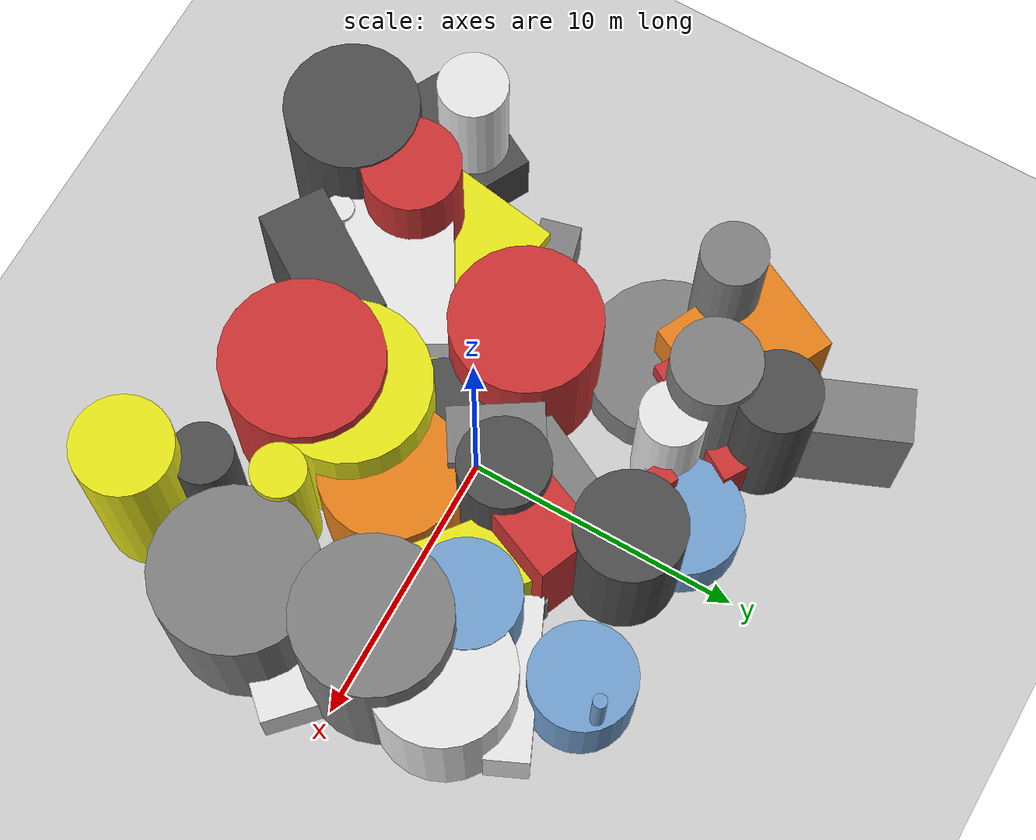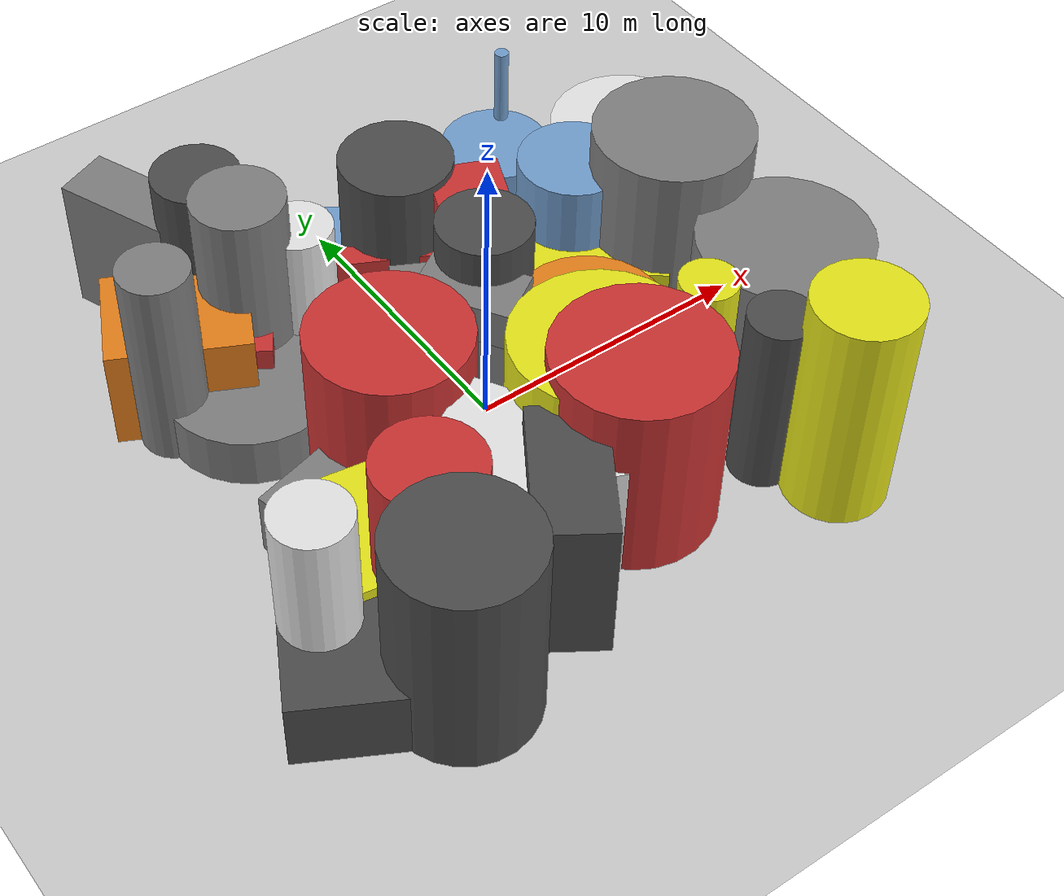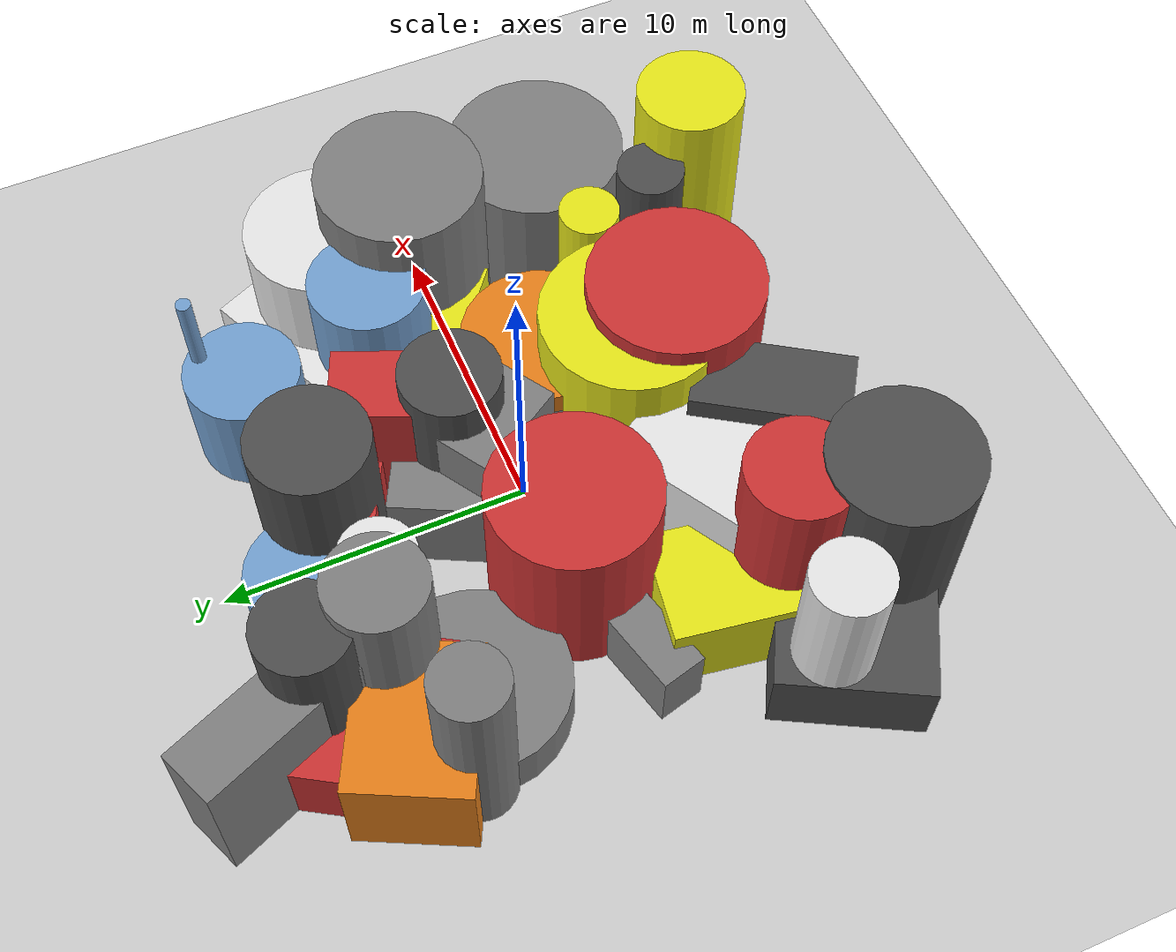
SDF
<?xml version='1.0'?>
<sdf version='1.6'>
  <world name='default'>
    <!-- Sun light -->
    <light name='sun' type='directional'>
      <cast_shadows>1</cast_shadows>
      <pose>0 0 10 0 0 0</pose>
      <diffuse>0.8 0.8 0.8 1</diffuse>
      <specular>0.2 0.2 0.2 1</specular>
      <attenuation>
        <range>1000</range>
        <constant>0.9</constant>
        <linear>0.01</linear>
        <quadratic>0.001</quadratic>
      </attenuation>
      <direction>-0.5 0.1 -0.9</direction>
    </light>

    <!-- Ground plane -->
    <model name='ground_plane'>
      <static>1</static>
      <link name='link'>
        <collision name='collision'>
          <geometry>
            <plane>
              <normal>0 0 1</normal>
              <size>100 100</size>
            </plane>
          </geometry>
          <surface>
            <contact>
              <collide_bitmask>65535</collide_bitmask>
              <ode/>
            </contact>
            <friction>
              <ode>
                <mu>100</mu>
                <mu2>50</mu2>
              </ode>
              <torsional><ode/></torsional>
            </friction>
            <bounce/>
          </surface>
          <max_contacts>10</max_contacts>
        </collision>
        <visual name='visual'>
          <cast_shadows>0</cast_shadows>
          <geometry>
            <plane>
              <normal>0 0 1</normal>
              <size>100 100</size>
            </plane>
          </geometry>
          <material>
            <script>
              <uri>file://media/materials/scripts/gazebo.material</uri>
              <n>Gazebo/Grey</n>
            </script>
          </material>
        </visual>
      </link>
    </model>

    <!-- Environment -->
    <magnetic_field>6e-06 2.3e-05 -4.2e-05</magnetic_field>
    <atmosphere type='adiabatic'/>
    <physics name='default_physics' default='0' type='ode'>
      <gravity>0 0 -9.8</gravity>
      <max_step_size>0.004</max_step_size>
      <real_time_factor>1</real_time_factor>
      <real_time_update_rate>250</real_time_update_rate>
    </physics>
    <scene>
      <ambient>0.4 0.4 0.4 1</ambient>
      <background>0.7 0.7 0.7 1</background>
      <shadows>1</shadows>
    </scene>
    <wind/>
    <spherical_coordinates>
      <surface_model>EARTH_WGS84</surface_model>
      <latitude_deg>0</latitude_deg>
      <longitude_deg>0</longitude_deg>
      <elevation>0</elevation>
      <heading_deg>0</heading_deg>
    </spherical_coordinates>

    <!-- ============ OBSTACLES (50) ============ -->
    <model name='obs_00'>
      <static>1</static>
      <link name='link'>
        <visual name='visual'>
          <geometry>
            <box>
              <size>3.5329 4.4609 2.9131</size>
            </box>
          </geometry>
          <material>
            <script>
              <n>Gazebo/Yellow</n>
              <uri>file://media/materials/scripts/gazebo.material</uri>
            </script>
            <ambient>0.9 0.9 0.1 1</ambient>
          </material>
        </visual>
        <collision name='collision'>
          <geometry>
            <box>
              <size>3.5329 4.4609 2.9131</size>
            </box>
          </geometry>
          <max_contacts>10</max_contacts>
          <surface>
            <contact><ode/></contact>
            <bounce/>
            <friction>
              <ode><mu>1</mu><mu2>1</mu2></ode>
              <torsional><ode/></torsional>
            </friction>
          </surface>
        </collision>
      </link>
      <pose>-6.4892 -3.9807 1.4565 0 0 2.9872</pose>
    </model>

    <model name='obs_01'>
      <static>1</static>
      <link name='link'>
        <visual name='visual'>
          <geometry>
            <cylinder>
              <radius>1.5410</radius>
              <length>7.1785</length>
            </cylinder>
          </geometry>
          <material>
            <script>
              <n>Gazebo/Grey</n>
              <uri>file://media/materials/scripts/gazebo.material</uri>
            </script>
            <ambient>0.5 0.5 0.5 1</ambient>
          </material>
        </visual>
        <collision name='collision'>
          <geometry>
            <cylinder>
              <radius>1.5410</radius>
              <length>7.1785</length>
            </cylinder>
          </geometry>
          <max_contacts>10</max_contacts>
          <surface>
            <contact><ode/></contact>
            <bounce/>
            <friction>
              <ode><mu>1</mu><mu2>1</mu2></ode>
              <torsional><ode/></torsional>
            </friction>
          </surface>
        </collision>
      </link>
      <pose>-4.9716 6.1829 3.5893 0 0 1.7715</pose>
    </model>

    <model name='obs_02'>
      <static>1</static>
      <link name='link'>
        <visual name='visual'>
          <geometry>
            <cylinder>
              <radius>1.8531</radius>
              <length>3.6703</length>
            </cylinder>
          </geometry>
          <material>
            <script>
              <n>Gazebo/Blue</n>
              <uri>file://media/materials/scripts/gazebo.material</uri>
            </script>
            <ambient>0.447 0.624 0.812 1</ambient>
          </material>
        </visual>
        <collision name='collision'>
          <geometry>
            <cylinder>
              <radius>1.8531</radius>
              <length>3.6703</length>
            </cylinder>
          </geometry>
          <max_contacts>10</max_contacts>
          <surface>
            <contact><ode/></contact>
            <bounce/>
            <friction>
              <ode><mu>1</mu><mu2>1</mu2></ode>
              <torsional><ode/></torsional>
            </friction>
          </surface>
        </collision>
      </link>
      <pose>5.4756 7.1289 1.8352 0 0 2.6334</pose>
    </model>

    <model name='obs_03'>
      <static>1</static>
      <link name='link'>
        <visual name='visual'>
          <geometry>
            <cylinder>
              <radius>1.8640</radius>
              <length>4.3508</length>
            </cylinder>
          </geometry>
          <material>
            <script>
              <n>Gazebo/White</n>
              <uri>file://media/materials/scripts/gazebo.material</uri>
            </script>
            <ambient>0.9 0.9 0.9 1</ambient>
          </material>
        </visual>
        <collision name='collision'>
          <geometry>
            <cylinder>
              <radius>1.8640</radius>
              <length>4.3508</length>
            </cylinder>
          </geometry>
          <max_contacts>10</max_contacts>
          <surface>
            <contact><ode/></contact>
            <bounce/>
            <friction>
              <ode><mu>1</mu><mu2>1</mu2></ode>
              <torsional><ode/></torsional>
            </friction>
          </surface>
        </collision>
      </link>
      <pose>-0.0577 -5.9034 2.1754 0 0 0.5254</pose>
    </model>

    <model name='obs_04'>
      <static>1</static>
      <link name='link'>
        <visual name='visual'>
          <geometry>
            <cylinder>
              <radius>1.2345</radius>
              <length>7.0005</length>
            </cylinder>
          </geometry>
          <material>
            <script>
              <n>Gazebo/White</n>
              <uri>file://media/materials/scripts/gazebo.material</uri>
            </script>
            <ambient>0.9 0.9 0.9 1</ambient>
          </material>
        </visual>
        <collision name='collision'>
          <geometry>
            <cylinder>
              <radius>1.2345</radius>
              <length>7.0005</length>
            </cylinder>
          </geometry>
          <max_contacts>10</max_contacts>
          <surface>
            <contact><ode/></contact>
            <bounce/>
            <friction>
              <ode><mu>1</mu><mu2>1</mu2></ode>
              <torsional><ode/></torsional>
            </friction>
          </surface>
        </collision>
      </link>
      <pose>-9.7882 -5.6520 3.5002 0 0 1.3908</pose>
    </model>

    <model name='obs_05'>
      <static>1</static>
      <link name='link'>
        <visual name='visual'>
          <geometry>
            <cylinder>
              <radius>1.8509</radius>
              <length>6.0012</length>
            </cylinder>
          </geometry>
          <material>
            <script>
              <n>Gazebo/Blue</n>
              <uri>file://media/materials/scripts/gazebo.material</uri>
            </script>
            <ambient>0.447 0.624 0.812 1</ambient>
          </material>
        </visual>
        <collision name='collision'>
          <geometry>
            <cylinder>
              <radius>1.8509</radius>
              <length>6.0012</length>
            </cylinder>
          </geometry>
          <max_contacts>10</max_contacts>
          <surface>
            <contact><ode/></contact>
            <bounce/>
            <friction>
              <ode><mu>1</mu><mu2>1</mu2></ode>
              <torsional><ode/></torsional>
            </friction>
          </surface>
        </collision>
      </link>
      <pose>5.4533 2.7887 3.0006 0 0 2.0248</pose>
    </model>

    <model name='obs_06'>
      <static>1</static>
      <link name='link'>
        <visual name='visual'>
          <geometry>
            <cylinder>
              <radius>1.0707</radius>
              <length>6.4828</length>
            </cylinder>
          </geometry>
          <material>
            <script>
              <n>Gazebo/DarkGrey</n>
              <uri>file://media/materials/scripts/gazebo.material</uri>
            </script>
            <ambient>0.3 0.3 0.3 1</ambient>
          </material>
        </visual>
        <collision name='collision'>
          <geometry>
            <cylinder>
              <radius>1.0707</radius>
              <length>6.4828</length>
            </cylinder>
          </geometry>
          <max_contacts>10</max_contacts>
          <surface>
            <contact><ode/></contact>
            <bounce/>
            <friction>
              <ode><mu>1</mu><mu2>1</mu2></ode>
              <torsional><ode/></torsional>
            </friction>
          </surface>
        </collision>
      </link>
      <pose>5.7296 -6.8460 3.2414 0 0 1.3660</pose>
    </model>

    <model name='obs_07'>
      <static>1</static>
      <link name='link'>
        <visual name='visual'>
          <geometry>
            <cylinder>
              <radius>1.0268</radius>
              <length>3.2236</length>
            </cylinder>
          </geometry>
          <material>
            <script>
              <n>Gazebo/Yellow</n>
              <uri>file://media/materials/scripts/gazebo.material</uri>
            </script>
            <ambient>0.9 0.9 0.1 1</ambient>
          </material>
        </visual>
        <collision name='collision'>
          <geometry>
            <cylinder>
              <radius>1.0268</radius>
              <length>3.2236</length>
            </cylinder>
          </geometry>
          <max_contacts>10</max_contacts>
          <surface>
            <contact><ode/></contact>
            <bounce/>
            <friction>
              <ode><mu>1</mu><mu2>1</mu2></ode>
              <torsional><ode/></torsional>
            </friction>
          </surface>
        </collision>
      </link>
      <pose>-3.3366 -7.4863 1.6118 0 0 0.0611</pose>
    </model>

    <model name='obs_08'>
      <static>1</static>
      <link name='link'>
        <visual name='visual'>
          <geometry>
            <box>
              <size>4.6411 3.7095 3.7119</size>
            </box>
          </geometry>
          <material>
            <script>
              <n>Gazebo/Orange</n>
              <uri>file://media/materials/scripts/gazebo.material</uri>
            </script>
            <ambient>0.9 0.5 0.1 1</ambient>
          </material>
        </visual>
        <collision name='collision'>
          <geometry>
            <box>
              <size>4.6411 3.7095 3.7119</size>
            </box>
          </geometry>
          <max_contacts>10</max_contacts>
          <surface>
            <contact><ode/></contact>
            <bounce/>
            <friction>
              <ode><mu>1</mu><mu2>1</mu2></ode>
              <torsional><ode/></torsional>
            </friction>
          </surface>
        </collision>
      </link>
      <pose>-7.4863 6.2615 1.8559 0 0 2.6836</pose>
    </model>

    <model name='obs_09'>
      <static>1</static>
      <link name='link'>
        <visual name='visual'>
          <geometry>
            <box>
              <size>3.6032 2.3589 5.5884</size>
            </box>
          </geometry>
          <material>
            <script>
              <n>Gazebo/Red</n>
              <uri>file://media/materials/scripts/gazebo.material</uri>
            </script>
            <ambient>0.8 0.2 0.2 1</ambient>
          </material>
        </visual>
        <collision name='collision'>
          <geometry>
            <box>
              <size>3.6032 2.3589 5.5884</size>
            </box>
          </geometry>
          <max_contacts>10</max_contacts>
          <surface>
            <contact><ode/></contact>
            <bounce/>
            <friction>
              <ode><mu>1</mu><mu2>1</mu2></ode>
              <torsional><ode/></torsional>
            </friction>
          </surface>
        </collision>
      </link>
      <pose>1.9221 3.3912 2.7942 0 0 1.1732</pose>
    </model>

    <model name='obs_10'>
      <static>1</static>
      <link name='link'>
        <visual name='visual'>
          <geometry>
            <cylinder>
              <radius>2.2258</radius>
              <length>3.2993</length>
            </cylinder>
          </geometry>
          <material>
            <script>
              <n>Gazebo/Yellow</n>
              <uri>file://media/materials/scripts/gazebo.material</uri>
            </script>
            <ambient>0.9 0.9 0.1 1</ambient>
          </material>
        </visual>
        <collision name='collision'>
          <geometry>
            <cylinder>
              <radius>2.2258</radius>
              <length>3.2993</length>
            </cylinder>
          </geometry>
          <max_contacts>10</max_contacts>
          <surface>
            <contact><ode/></contact>
            <bounce/>
            <friction>
              <ode><mu>1</mu><mu2>1</mu2></ode>
              <torsional><ode/></torsional>
            </friction>
          </surface>
        </collision>
      </link>
      <pose>-2.0014 -4.6153 1.6497 0 0 1.6910</pose>
    </model>

    <model name='obs_11'>
      <static>1</static>
      <link name='link'>
        <visual name='visual'>
          <geometry>
            <box>
              <size>0.7570 5.1670 1.8831</size>
            </box>
          </geometry>
          <material>
            <script>
              <n>Gazebo/Grey</n>
              <uri>file://media/materials/scripts/gazebo.material</uri>
            </script>
            <ambient>0.5 0.5 0.5 1</ambient>
          </material>
        </visual>
        <collision name='collision'>
          <geometry>
            <box>
              <size>0.7570 5.1670 1.8831</size>
            </box>
          </geometry>
          <max_contacts>10</max_contacts>
          <surface>
            <contact><ode/></contact>
            <bounce/>
            <friction>
              <ode><mu>1</mu><mu2>1</mu2></ode>
              <torsional><ode/></torsional>
            </friction>
          </surface>
        </collision>
      </link>
      <pose>4.2068 -1.1250 0.9416 0 0 1.0818</pose>
    </model>

    <model name='obs_12'>
      <static>1</static>
      <link name='link'>
        <visual name='visual'>
          <geometry>
            <cylinder>
              <radius>2.0919</radius>
              <length>2.2964</length>
            </cylinder>
          </geometry>
          <material>
            <script>
              <n>Gazebo/Blue</n>
              <uri>file://media/materials/scripts/gazebo.material</uri>
            </script>
            <ambient>0.447 0.624 0.812 1</ambient>
          </material>
        </visual>
        <collision name='collision'>
          <geometry>
            <cylinder>
              <radius>2.0919</radius>
              <length>2.2964</length>
            </cylinder>
          </geometry>
          <max_contacts>10</max_contacts>
          <surface>
            <contact><ode/></contact>
            <bounce/>
            <friction>
              <ode><mu>1</mu><mu2>1</mu2></ode>
              <torsional><ode/></torsional>
            </friction>
          </surface>
        </collision>
      </link>
      <pose>-1.3203 7.3149 1.1482 0 0 0.2286</pose>
    </model>

    <model name='obs_13'>
      <static>1</static>
      <link name='link'>
        <visual name='visual'>
          <geometry>
            <cylinder>
              <radius>0.2409</radius>
              <length>6.4012</length>
            </cylinder>
          </geometry>
          <material>
            <script>
              <n>Gazebo/Blue</n>
              <uri>file://media/materials/scripts/gazebo.material</uri>
            </script>
            <ambient>0.447 0.624 0.812 1</ambient>
          </material>
        </visual>
        <collision name='collision'>
          <geometry>
            <cylinder>
              <radius>0.2409</radius>
              <length>6.4012</length>
            </cylinder>
          </geometry>
          <max_contacts>10</max_contacts>
          <surface>
            <contact><ode/></contact>
            <bounce/>
            <friction>
              <ode><mu>1</mu><mu2>1</mu2></ode>
              <torsional><ode/></torsional>
            </friction>
          </surface>
        </collision>
      </link>
      <pose>6.4886 8.1846 3.2006 0 0 2.8058</pose>
    </model>

    <model name='obs_14'>
      <static>1</static>
      <link name='link'>
        <visual name='visual'>
          <geometry>
            <cylinder>
              <radius>1.7191</radius>
              <length>7.8987</length>
            </cylinder>
          </geometry>
          <material>
            <script>
              <n>Gazebo/Yellow</n>
              <uri>file://media/materials/scripts/gazebo.material</uri>
            </script>
            <ambient>0.9 0.9 0.1 1</ambient>
          </material>
        </visual>
        <collision name='collision'>
          <geometry>
            <cylinder>
              <radius>1.7191</radius>
              <length>7.8987</length>
            </cylinder>
          </geometry>
          <max_contacts>10</max_contacts>
          <surface>
            <contact><ode/></contact>
            <bounce/>
            <friction>
              <ode><mu>1</mu><mu2>1</mu2></ode>
              <torsional><ode/></torsional>
            </friction>
          </surface>
        </collision>
      </link>
      <pose>7.0598 -8.7849 3.9493 0 0 2.3421</pose>
    </model>

    <model name='obs_15'>
      <static>1</static>
      <link name='link'>
        <visual name='visual'>
          <geometry>
            <box>
              <size>2.6990 5.9891 3.6079</size>
            </box>
          </geometry>
          <material>
            <script>
              <n>Gazebo/Yellow</n>
              <uri>file://media/materials/scripts/gazebo.material</uri>
            </script>
            <ambient>0.9 0.9 0.1 1</ambient>
          </material>
        </visual>
        <collision name='collision'>
          <geometry>
            <box>
              <size>2.6990 5.9891 3.6079</size>
            </box>
          </geometry>
          <max_contacts>10</max_contacts>
          <surface>
            <contact><ode/></contact>
            <bounce/>
            <friction>
              <ode><mu>1</mu><mu2>1</mu2></ode>
              <torsional><ode/></torsional>
            </friction>
          </surface>
        </collision>
      </link>
      <pose>4.6727 1.5136 1.8040 0 0 0.9053</pose>
    </model>

    <model name='obs_16'>
      <static>1</static>
      <link name='link'>
        <visual name='visual'>
          <geometry>
            <cylinder>
              <radius>1.1615</radius>
              <length>7.1233</length>
            </cylinder>
          </geometry>
          <material>
            <script>
              <n>Gazebo/Grey</n>
              <uri>file://media/materials/scripts/gazebo.material</uri>
            </script>
            <ambient>0.5 0.5 0.5 1</ambient>
          </material>
        </visual>
        <collision name='collision'>
          <geometry>
            <cylinder>
              <radius>1.1615</radius>
              <length>7.1233</length>
            </cylinder>
          </geometry>
          <max_contacts>10</max_contacts>
          <surface>
            <contact><ode/></contact>
            <bounce/>
            <friction>
              <ode><mu>1</mu><mu2>1</mu2></ode>
              <torsional><ode/></torsional>
            </friction>
          </surface>
        </collision>
      </link>
      <pose>-8.6131 4.9348 3.5617 0 0 2.5418</pose>
    </model>

    <model name='obs_17'>
      <static>1</static>
      <link name='link'>
        <visual name='visual'>
          <geometry>
            <box>
              <size>4.1352 0.8401 3.1221</size>
            </box>
          </geometry>
          <material>
            <script>
              <n>Gazebo/Red</n>
              <uri>file://media/materials/scripts/gazebo.material</uri>
            </script>
            <ambient>0.8 0.2 0.2 1</ambient>
          </material>
        </visual>
        <collision name='collision'>
          <geometry>
            <box>
              <size>4.1352 0.8401 3.1221</size>
            </box>
          </geometry>
          <max_contacts>10</max_contacts>
          <surface>
            <contact><ode/></contact>
            <bounce/>
            <friction>
              <ode><mu>1</mu><mu2>1</mu2></ode>
              <torsional><ode/></torsional>
            </friction>
          </surface>
        </collision>
      </link>
      <pose>-0.4330 5.3337 1.5610 0 0 2.6818</pose>
    </model>

    <model name='obs_18'>
      <static>1</static>
      <link name='link'>
        <visual name='visual'>
          <geometry>
            <cylinder>
              <radius>2.9112</radius>
              <length>1.8172</length>
            </cylinder>
          </geometry>
          <material>
            <script>
              <n>Gazebo/Grey</n>
              <uri>file://media/materials/scripts/gazebo.material</uri>
            </script>
            <ambient>0.5 0.5 0.5 1</ambient>
          </material>
        </visual>
        <collision name='collision'>
          <geometry>
            <cylinder>
              <radius>2.9112</radius>
              <length>1.8172</length>
            </cylinder>
          </geometry>
          <max_contacts>10</max_contacts>
          <surface>
            <contact><ode/></contact>
            <bounce/>
            <friction>
              <ode><mu>1</mu><mu2>1</mu2></ode>
              <torsional><ode/></torsional>
            </friction>
          </surface>
        </collision>
      </link>
      <pose>-6.2414 4.0862 0.9086 0 0 0.7980</pose>
    </model>

    <model name='obs_19'>
      <static>1</static>
      <link name='link'>
        <visual name='visual'>
          <geometry>
            <cylinder>
              <radius>2.4707</radius>
              <length>4.3574</length>
            </cylinder>
          </geometry>
          <material>
            <script>
              <n>Gazebo/Orange</n>
              <uri>file://media/materials/scripts/gazebo.material</uri>
            </script>
            <ambient>0.9 0.5 0.1 1</ambient>
          </material>
        </visual>
        <collision name='collision'>
          <geometry>
            <cylinder>
              <radius>2.4707</radius>
              <length>4.3574</length>
            </cylinder>
          </geometry>
          <max_contacts>10</max_contacts>
          <surface>
            <contact><ode/></contact>
            <bounce/>
            <friction>
              <ode><mu>1</mu><mu2>1</mu2></ode>
              <torsional><ode/></torsional>
            </friction>
          </surface>
        </collision>
      </link>
      <pose>2.6639 -1.7307 2.1787 0 0 3.1128</pose>
    </model>

    <model name='obs_20'>
      <static>1</static>
      <link name='link'>
        <visual name='visual'>
          <geometry>
            <cylinder>
              <radius>2.1596</radius>
              <length>3.5907</length>
            </cylinder>
          </geometry>
          <material>
            <script>
              <n>Gazebo/DarkGrey</n>
              <uri>file://media/materials/scripts/gazebo.material</uri>
            </script>
            <ambient>0.3 0.3 0.3 1</ambient>
          </material>
        </visual>
        <collision name='collision'>
          <geometry>
            <cylinder>
              <radius>2.1596</radius>
              <length>3.5907</length>
            </cylinder>
          </geometry>
          <max_contacts>10</max_contacts>
          <surface>
            <contact><ode/></contact>
            <bounce/>
            <friction>
              <ode><mu>1</mu><mu2>1</mu2></ode>
              <torsional><ode/></torsional>
            </friction>
          </surface>
        </collision>
      </link>
      <pose>0.0121 -1.1960 1.7953 0 0 1.0585</pose>
    </model>

    <model name='obs_21'>
      <static>1</static>
      <link name='link'>
        <visual name='visual'>
          <geometry>
            <box>
              <size>4.3103 3.0459 3.1133</size>
            </box>
          </geometry>
          <material>
            <script>
              <n>Gazebo/Grey</n>
              <uri>file://media/materials/scripts/gazebo.material</uri>
            </script>
            <ambient>0.5 0.5 0.5 1</ambient>
          </material>
        </visual>
        <collision name='collision'>
          <geometry>
            <box>
              <size>4.3103 3.0459 3.1133</size>
            </box>
          </geometry>
          <max_contacts>10</max_contacts>
          <surface>
            <contact><ode/></contact>
            <bounce/>
            <friction>
              <ode><mu>1</mu><mu2>1</mu2></ode>
              <torsional><ode/></torsional>
            </friction>
          </surface>
        </collision>
      </link>
      <pose>-0.1835 2.0252 1.5567 0 0 1.1032</pose>
    </model>

    <model name='obs_22'>
      <static>1</static>
      <link name='link'>
        <visual name='visual'>
          <geometry>
            <cylinder>
              <radius>2.6319</radius>
              <length>7.4570</length>
            </cylinder>
          </geometry>
          <material>
            <script>
              <n>Gazebo/Grey</n>
              <uri>file://media/materials/scripts/gazebo.material</uri>
            </script>
            <ambient>0.5 0.5 0.5 1</ambient>
          </material>
        </visual>
        <collision name='collision'>
          <geometry>
            <cylinder>
              <radius>2.6319</radius>
              <length>7.4570</length>
            </cylinder>
          </geometry>
          <max_contacts>10</max_contacts>
          <surface>
            <contact><ode/></contact>
            <bounce/>
            <friction>
              <ode><mu>1</mu><mu2>1</mu2></ode>
              <torsional><ode/></torsional>
            </friction>
          </surface>
        </collision>
      </link>
      <pose>7.8145 0.7759 3.7285 0 0 2.5449</pose>
    </model>

    <model name='obs_23'>
      <static>1</static>
      <link name='link'>
        <visual name='visual'>
          <geometry>
            <cylinder>
              <radius>1.7606</radius>
              <length>3.4132</length>
            </cylinder>
          </geometry>
          <material>
            <script>
              <n>Gazebo/Grey</n>
              <uri>file://media/materials/scripts/gazebo.material</uri>
            </script>
            <ambient>0.5 0.5 0.5 1</ambient>
          </material>
        </visual>
        <collision name='collision'>
          <geometry>
            <cylinder>
              <radius>1.7606</radius>
              <length>3.4132</length>
            </cylinder>
          </geometry>
          <max_contacts>10</max_contacts>
          <surface>
            <contact><ode/></contact>
            <bounce/>
            <friction>
              <ode><mu>1</mu><mu2>1</mu2></ode>
              <torsional><ode/></torsional>
            </friction>
          </surface>
        </collision>
      </link>
      <pose>7.7593 -5.6863 1.7066 0 0 2.7216</pose>
    </model>

    <model name='obs_24'>
      <static>1</static>
      <link name='link'>
        <visual name='visual'>
          <geometry>
            <box>
              <size>1.5622 5.5812 2.8104</size>
            </box>
          </geometry>
          <material>
            <script>
              <n>Gazebo/White</n>
              <uri>file://media/materials/scripts/gazebo.material</uri>
            </script>
            <ambient>0.9 0.9 0.9 1</ambient>
          </material>
        </visual>
        <collision name='collision'>
          <geometry>
            <box>
              <size>1.5622 5.5812 2.8104</size>
            </box>
          </geometry>
          <max_contacts>10</max_contacts>
          <surface>
            <contact><ode/></contact>
            <bounce/>
            <friction>
              <ode><mu>1</mu><mu2>1</mu2></ode>
              <torsional><ode/></torsional>
            </friction>
          </surface>
        </collision>
      </link>
      <pose>6.4451 5.1081 1.4052 0 0 1.9933</pose>
    </model>

    <model name='obs_25'>
      <static>1</static>
      <link name='link'>
        <visual name='visual'>
          <geometry>
            <cylinder>
              <radius>1.7161</radius>
              <length>7.0272</length>
            </cylinder>
          </geometry>
          <material>
            <script>
              <n>Gazebo/Red</n>
              <uri>file://media/materials/scripts/gazebo.material</uri>
            </script>
            <ambient>0.8 0.2 0.2 1</ambient>
          </material>
        </visual>
        <collision name='collision'>
          <geometry>
            <cylinder>
              <radius>1.7161</radius>
              <length>7.0272</length>
            </cylinder>
          </geometry>
          <max_contacts>10</max_contacts>
          <surface>
            <contact><ode/></contact>
            <bounce/>
            <friction>
              <ode><mu>1</mu><mu2>1</mu2></ode>
              <torsional><ode/></torsional>
            </friction>
          </surface>
        </collision>
      </link>
      <pose>-6.2296 -5.9891 3.5136 0 0 0.1714</pose>
    </model>

    <model name='obs_26'>
      <static>1</static>
      <link name='link'>
        <visual name='visual'>
          <geometry>
            <cylinder>
              <radius>1.9077</radius>
              <length>5.8467</length>
            </cylinder>
          </geometry>
          <material>
            <script>
              <n>Gazebo/DarkGrey</n>
              <uri>file://media/materials/scripts/gazebo.material</uri>
            </script>
            <ambient>0.3 0.3 0.3 1</ambient>
          </material>
        </visual>
        <collision name='collision'>
          <geometry>
            <cylinder>
              <radius>1.9077</radius>
              <length>5.8467</length>
            </cylinder>
          </geometry>
          <max_contacts>10</max_contacts>
          <surface>
            <contact><ode/></contact>
            <bounce/>
            <friction>
              <ode><mu>1</mu><mu2>1</mu2></ode>
              <torsional><ode/></torsional>
            </friction>
          </surface>
        </collision>
      </link>
      <pose>0.8751 6.2690 2.9233 0 0 1.6676</pose>
    </model>

    <model name='obs_27'>
      <static>1</static>
      <link name='link'>
        <visual name='visual'>
          <geometry>
            <box>
              <size>2.4356 4.8236 5.3627</size>
            </box>
          </geometry>
          <material>
            <script>
              <n>Gazebo/DarkGrey</n>
              <uri>file://media/materials/scripts/gazebo.material</uri>
            </script>
            <ambient>0.3 0.3 0.3 1</ambient>
          </material>
        </visual>
        <collision name='collision'>
          <geometry>
            <box>
              <size>2.4356 4.8236 5.3627</size>
            </box>
          </geometry>
          <max_contacts>10</max_contacts>
          <surface>
            <contact><ode/></contact>
            <bounce/>
            <friction>
              <ode><mu>1</mu><mu2>1</mu2></ode>
              <torsional><ode/></torsional>
            </friction>
          </surface>
        </collision>
      </link>
      <pose>-2.2952 -7.2395 2.6813 0 0 2.5636</pose>
    </model>

    <model name='obs_28'>
      <static>1</static>
      <link name='link'>
        <visual name='visual'>
          <geometry>
            <box>
              <size>1.8727 1.2519 1.4490</size>
            </box>
          </geometry>
          <material>
            <script>
              <n>Gazebo/Grey</n>
              <uri>file://media/materials/scripts/gazebo.material</uri>
            </script>
            <ambient>0.5 0.5 0.5 1</ambient>
          </material>
        </visual>
        <collision name='collision'>
          <geometry>
            <box>
              <size>1.8727 1.2519 1.4490</size>
            </box>
          </geometry>
          <max_contacts>10</max_contacts>
          <surface>
            <contact><ode/></contact>
            <bounce/>
            <friction>
              <ode><mu>1</mu><mu2>1</mu2></ode>
              <torsional><ode/></torsional>
            </friction>
          </surface>
        </collision>
      </link>
      <pose>-3.8079 -3.6028 0.7245 0 0 1.0941</pose>
    </model>

    <model name='obs_29'>
      <static>1</static>
      <link name='link'>
        <visual name='visual'>
          <geometry>
            <cylinder>
              <radius>1.1694</radius>
              <length>5.5424</length>
            </cylinder>
          </geometry>
          <material>
            <script>
              <n>Gazebo/White</n>
              <uri>file://media/materials/scripts/gazebo.material</uri>
            </script>
            <ambient>0.9 0.9 0.9 1</ambient>
          </material>
        </visual>
        <collision name='collision'>
          <geometry>
            <cylinder>
              <radius>1.1694</radius>
              <length>5.5424</length>
            </cylinder>
          </geometry>
          <max_contacts>10</max_contacts>
          <surface>
            <contact><ode/></contact>
            <bounce/>
            <friction>
              <ode><mu>1</mu><mu2>1</mu2></ode>
              <torsional><ode/></torsional>
            </friction>
          </surface>
        </collision>
      </link>
      <pose>-3.2650 5.6503 2.7712 0 0 2.2002</pose>
    </model>

    <model name='obs_30'>
      <static>1</static>
      <link name='link'>
        <visual name='visual'>
          <geometry>
            <cylinder>
              <radius>2.3282</radius>
              <length>7.1363</length>
            </cylinder>
          </geometry>
          <material>
            <script>
              <n>Gazebo/DarkGrey</n>
              <uri>file://media/materials/scripts/gazebo.material</uri>
            </script>
            <ambient>0.3 0.3 0.3 1</ambient>
          </material>
        </visual>
        <collision name='collision'>
          <geometry>
            <cylinder>
              <radius>2.3282</radius>
              <length>7.1363</length>
            </cylinder>
          </geometry>
          <max_contacts>10</max_contacts>
          <surface>
            <contact><ode/></contact>
            <bounce/>
            <friction>
              <ode><mu>1</mu><mu2>1</mu2></ode>
              <torsional><ode/></torsional>
            </friction>
          </surface>
        </collision>
      </link>
      <pose>-7.0543 -8.7842 3.5682 0 0 1.8931</pose>
    </model>

    <model name='obs_31'>
      <static>1</static>
      <link name='link'>
        <visual name='visual'>
          <geometry>
            <box>
              <size>3.7345 5.4393 4.5934</size>
            </box>
          </geometry>
          <material>
            <script>
              <n>Gazebo/White</n>
              <uri>file://media/materials/scripts/gazebo.material</uri>
            </script>
            <ambient>0.9 0.9 0.9 1</ambient>
          </material>
        </visual>
        <collision name='collision'>
          <geometry>
            <box>
              <size>3.7345 5.4393 4.5934</size>
            </box>
          </geometry>
          <max_contacts>10</max_contacts>
          <surface>
            <contact><ode/></contact>
            <bounce/>
            <friction>
              <ode><mu>1</mu><mu2>1</mu2></ode>
              <torsional><ode/></torsional>
            </friction>
          </surface>
        </collision>
      </link>
      <pose>-3.5454 -4.9994 2.2967 0 0 2.1011</pose>
    </model>

    <model name='obs_32'>
      <static>1</static>
      <link name='link'>
        <visual name='visual'>
          <geometry>
            <cylinder>
              <radius>1.5810</radius>
              <length>6.2701</length>
            </cylinder>
          </geometry>
          <material>
            <script>
              <n>Gazebo/DarkGrey</n>
              <uri>file://media/materials/scripts/gazebo.material</uri>
            </script>
            <ambient>0.3 0.3 0.3 1</ambient>
          </material>
        </visual>
        <collision name='collision'>
          <geometry>
            <cylinder>
              <radius>1.5810</radius>
              <length>6.2701</length>
            </cylinder>
          </geometry>
          <max_contacts>10</max_contacts>
          <surface>
            <contact><ode/></contact>
            <bounce/>
            <friction>
              <ode><mu>1</mu><mu2>1</mu2></ode>
              <torsional><ode/></torsional>
            </friction>
          </surface>
        </collision>
      </link>
      <pose>1.1497 1.7352 3.1351 0 0 3.0896</pose>
    </model>

    <model name='obs_33'>
      <static>1</static>
      <link name='link'>
        <visual name='visual'>
          <geometry>
            <box>
              <size>4.7022 4.7568 2.6166</size>
            </box>
          </geometry>
          <material>
            <script>
              <n>Gazebo/Red</n>
              <uri>file://media/materials/scripts/gazebo.material</uri>
            </script>
            <ambient>0.8 0.2 0.2 1</ambient>
          </material>
        </visual>
        <collision name='collision'>
          <geometry>
            <box>
              <size>4.7022 4.7568 2.6166</size>
            </box>
          </geometry>
          <max_contacts>10</max_contacts>
          <surface>
            <contact><ode/></contact>
            <bounce/>
            <friction>
              <ode><mu>1</mu><mu2>1</mu2></ode>
              <torsional><ode/></torsional>
            </friction>
          </surface>
        </collision>
      </link>
      <pose>-6.2342 7.1998 1.3083 0 0 1.0226</pose>
    </model>

    <model name='obs_34'>
      <static>1</static>
      <link name='link'>
        <visual name='visual'>
          <geometry>
            <cylinder>
              <radius>0.9519</radius>
              <length>6.4319</length>
            </cylinder>
          </geometry>
          <material>
            <script>
              <n>Gazebo/Yellow</n>
              <uri>file://media/materials/scripts/gazebo.material</uri>
            </script>
            <ambient>0.9 0.9 0.1 1</ambient>
          </material>
        </visual>
        <collision name='collision'>
          <geometry>
            <cylinder>
              <radius>0.9519</radius>
              <length>6.4319</length>
            </cylinder>
          </geometry>
          <max_contacts>10</max_contacts>
          <surface>
            <contact><ode/></contact>
            <bounce/>
            <friction>
              <ode><mu>1</mu><mu2>1</mu2></ode>
              <torsional><ode/></torsional>
            </friction>
          </surface>
        </collision>
      </link>
      <pose>4.9944 -4.4136 3.2160 0 0 2.9570</pose>
    </model>

    <model name='obs_35'>
      <static>1</static>
      <link name='link'>
        <visual name='visual'>
          <geometry>
            <box>
              <size>4.0258 1.4765 2.3106</size>
            </box>
          </geometry>
          <material>
            <script>
              <n>Gazebo/Grey</n>
              <uri>file://media/materials/scripts/gazebo.material</uri>
            </script>
            <ambient>0.5 0.5 0.5 1</ambient>
          </material>
        </visual>
        <collision name='collision'>
          <geometry>
            <box>
              <size>4.0258 1.4765 2.3106</size>
            </box>
          </geometry>
          <max_contacts>10</max_contacts>
          <surface>
            <contact><ode/></contact>
            <bounce/>
            <friction>
              <ode><mu>1</mu><mu2>1</mu2></ode>
              <torsional><ode/></torsional>
            </friction>
          </surface>
        </collision>
      </link>
      <pose>-6.7337 -0.9873 1.1553 0 0 0.2499</pose>
    </model>

    <model name='obs_36'>
      <static>1</static>
      <link name='link'>
        <visual name='visual'>
          <geometry>
            <cylinder>
              <radius>2.4729</radius>
              <length>5.9334</length>
            </cylinder>
          </geometry>
          <material>
            <script>
              <n>Gazebo/White</n>
              <uri>file://media/materials/scripts/gazebo.material</uri>
            </script>
            <ambient>0.9 0.9 0.9 1</ambient>
          </material>
        </visual>
        <collision name='collision'>
          <geometry>
            <cylinder>
              <radius>2.4729</radius>
              <length>5.9334</length>
            </cylinder>
          </geometry>
          <max_contacts>10</max_contacts>
          <surface>
            <contact><ode/></contact>
            <bounce/>
            <friction>
              <ode><mu>1</mu><mu2>1</mu2></ode>
              <torsional><ode/></torsional>
            </friction>
          </surface>
        </collision>
      </link>
      <pose>8.0005 3.3476 2.9667 0 0 0.2768</pose>
    </model>

    <model name='obs_37'>
      <static>1</static>
      <link name='link'>
        <visual name='visual'>
          <geometry>
            <box>
              <size>2.7986 2.9808 1.9677</size>
            </box>
          </geometry>
          <material>
            <script>
              <n>Gazebo/Yellow</n>
              <uri>file://media/materials/scripts/gazebo.material</uri>
            </script>
            <ambient>0.9 0.9 0.1 1</ambient>
          </material>
        </visual>
        <collision name='collision'>
          <geometry>
            <box>
              <size>2.7986 2.9808 1.9677</size>
            </box>
          </geometry>
          <max_contacts>10</max_contacts>
          <surface>
            <contact><ode/></contact>
            <bounce/>
            <friction>
              <ode><mu>1</mu><mu2>1</mu2></ode>
              <torsional><ode/></torsional>
            </friction>
          </surface>
        </collision>
      </link>
      <pose>-2.7341 -0.8219 0.9838 0 0 2.9305</pose>
    </model>

    <model name='obs_38'>
      <static>1</static>
      <link name='link'>
        <visual name='visual'>
          <geometry>
            <box>
              <size>5.0054 3.0631 2.1098</size>
            </box>
          </geometry>
          <material>
            <script>
              <n>Gazebo/White</n>
              <uri>file://media/materials/scripts/gazebo.material</uri>
            </script>
            <ambient>0.9 0.9 0.9 1</ambient>
          </material>
        </visual>
        <collision name='collision'>
          <geometry>
            <box>
              <size>5.0054 3.0631 2.1098</size>
            </box>
          </geometry>
          <max_contacts>10</max_contacts>
          <surface>
            <contact><ode/></contact>
            <bounce/>
            <friction>
              <ode><mu>1</mu><mu2>1</mu2></ode>
              <torsional><ode/></torsional>
            </friction>
          </surface>
        </collision>
      </link>
      <pose>8.9208 -2.2347 1.0549 0 0 0.8164</pose>
    </model>

    <model name='obs_39'>
      <static>1</static>
      <link name='link'>
        <visual name='visual'>
          <geometry>
            <cylinder>
              <radius>0.5026</radius>
              <length>4.7447</length>
            </cylinder>
          </geometry>
          <material>
            <script>
              <n>Gazebo/White</n>
              <uri>file://media/materials/scripts/gazebo.material</uri>
            </script>
            <ambient>0.9 0.9 0.9 1</ambient>
          </material>
        </visual>
        <collision name='collision'>
          <geometry>
            <cylinder>
              <radius>0.5026</radius>
              <length>4.7447</length>
            </cylinder>
          </geometry>
          <max_contacts>10</max_contacts>
          <surface>
            <contact><ode/></contact>
            <bounce/>
            <friction>
              <ode><mu>1</mu><mu2>1</mu2></ode>
              <torsional><ode/></torsional>
            </friction>
          </surface>
        </collision>
      </link>
      <pose>-4.4748 -7.8866 2.3724 0 0 2.4519</pose>
    </model>

    <model name='obs_40'>
      <static>1</static>
      <link name='link'>
        <visual name='visual'>
          <geometry>
            <box>
              <size>4.7632 4.7459 2.5356</size>
            </box>
          </geometry>
          <material>
            <script>
              <n>Gazebo/DarkGrey</n>
              <uri>file://media/materials/scripts/gazebo.material</uri>
            </script>
            <ambient>0.3 0.3 0.3 1</ambient>
          </material>
        </visual>
        <collision name='collision'>
          <geometry>
            <box>
              <size>4.7632 4.7459 2.5356</size>
            </box>
          </geometry>
          <max_contacts>10</max_contacts>
          <surface>
            <contact><ode/></contact>
            <bounce/>
            <friction>
              <ode><mu>1</mu><mu2>1</mu2></ode>
              <torsional><ode/></torsional>
            </friction>
          </surface>
        </collision>
      </link>
      <pose>-9.1103 -6.8115 1.2678 0 0 2.6487</pose>
    </model>

    <model name='obs_41'>
      <static>1</static>
      <link name='link'>
        <visual name='visual'>
          <geometry>
            <cylinder>
              <radius>1.0902</radius>
              <length>2.6797</length>
            </cylinder>
          </geometry>
          <material>
            <script>
              <n>Gazebo/White</n>
              <uri>file://media/materials/scripts/gazebo.material</uri>
            </script>
            <ambient>0.9 0.9 0.9 1</ambient>
          </material>
        </visual>
        <collision name='collision'>
          <geometry>
            <cylinder>
              <radius>1.0902</radius>
              <length>2.6797</length>
            </cylinder>
          </geometry>
          <max_contacts>10</max_contacts>
          <surface>
            <contact><ode/></contact>
            <bounce/>
            <friction>
              <ode><mu>1</mu><mu2>1</mu2></ode>
              <torsional><ode/></torsional>
            </friction>
          </surface>
        </collision>
      </link>
      <pose>-2.3872 -2.9127 1.3398 0 0 0.7377</pose>
    </model>

    <model name='obs_42'>
      <static>1</static>
      <link name='link'>
        <visual name='visual'>
          <geometry>
            <cylinder>
              <radius>2.8808</radius>
              <length>6.0514</length>
            </cylinder>
          </geometry>
          <material>
            <script>
              <n>Gazebo/Yellow</n>
              <uri>file://media/materials/scripts/gazebo.material</uri>
            </script>
            <ambient>0.9 0.9 0.1 1</ambient>
          </material>
        </visual>
        <collision name='collision'>
          <geometry>
            <cylinder>
              <radius>2.8808</radius>
              <length>6.0514</length>
            </cylinder>
          </geometry>
          <max_contacts>10</max_contacts>
          <surface>
            <contact><ode/></contact>
            <bounce/>
            <friction>
              <ode><mu>1</mu><mu2>1</mu2></ode>
              <torsional><ode/></torsional>
            </friction>
          </surface>
        </collision>
      </link>
      <pose>1.1794 -4.1737 3.0257 0 0 1.4488</pose>
    </model>

    <model name='obs_43'>
      <static>1</static>
      <link name='link'>
        <visual name='visual'>
          <geometry>
            <cylinder>
              <radius>2.6361</radius>
              <length>5.8119</length>
            </cylinder>
          </geometry>
          <material>
            <script>
              <n>Gazebo/Red</n>
              <uri>file://media/materials/scripts/gazebo.material</uri>
            </script>
            <ambient>0.8 0.2 0.2 1</ambient>
          </material>
        </visual>
        <collision name='collision'>
          <geometry>
            <cylinder>
              <radius>2.6361</radius>
              <length>5.8119</length>
            </cylinder>
          </geometry>
          <max_contacts>10</max_contacts>
          <surface>
            <contact><ode/></contact>
            <bounce/>
            <friction>
              <ode><mu>1</mu><mu2>1</mu2></ode>
              <torsional><ode/></torsional>
            </friction>
          </surface>
        </collision>
      </link>
      <pose>-3.6866 -0.1573 2.9059 0 0 0.4496</pose>
    </model>

    <model name='obs_44'>
      <static>1</static>
      <link name='link'>
        <visual name='visual'>
          <geometry>
            <cylinder>
              <radius>2.7829</radius>
              <length>6.6332</length>
            </cylinder>
          </geometry>
          <material>
            <script>
              <n>Gazebo/Red</n>
              <uri>file://media/materials/scripts/gazebo.material</uri>
            </script>
            <ambient>0.8 0.2 0.2 1</ambient>
          </material>
        </visual>
        <collision name='collision'>
          <geometry>
            <cylinder>
              <radius>2.7829</radius>
              <length>6.6332</length>
            </cylinder>
          </geometry>
          <max_contacts>10</max_contacts>
          <surface>
            <contact><ode/></contact>
            <bounce/>
            <friction>
              <ode><mu>1</mu><mu2>1</mu2></ode>
              <torsional><ode/></torsional>
            </friction>
          </surface>
        </collision>
      </link>
      <pose>1.3744 -5.6958 3.3166 0 0 1.4434</pose>
    </model>

    <model name='obs_45'>
      <static>1</static>
      <link name='link'>
        <visual name='visual'>
          <geometry>
            <cylinder>
              <radius>2.8280</radius>
              <length>6.0582</length>
            </cylinder>
          </geometry>
          <material>
            <script>
              <n>Gazebo/Grey</n>
              <uri>file://media/materials/scripts/gazebo.material</uri>
            </script>
            <ambient>0.5 0.5 0.5 1</ambient>
          </material>
        </visual>
        <collision name='collision'>
          <geometry>
            <cylinder>
              <radius>2.8280</radius>
              <length>6.0582</length>
            </cylinder>
          </geometry>
          <max_contacts>10</max_contacts>
          <surface>
            <contact><ode/></contact>
            <bounce/>
            <friction>
              <ode><mu>1</mu><mu2>1</mu2></ode>
              <torsional><ode/></torsional>
            </friction>
          </surface>
        </collision>
      </link>
      <pose>8.4281 -4.0149 3.0291 0 0 0.2839</pose>
    </model>

    <model name='obs_46'>
      <static>1</static>
      <link name='link'>
        <visual name='visual'>
          <geometry>
            <cylinder>
              <radius>1.4501</radius>
              <length>6.7156</length>
            </cylinder>
          </geometry>
          <material>
            <script>
              <n>Gazebo/DarkGrey</n>
              <uri>file://media/materials/scripts/gazebo.material</uri>
            </script>
            <ambient>0.3 0.3 0.3 1</ambient>
          </material>
        </visual>
        <collision name='collision'>
          <geometry>
            <cylinder>
              <radius>1.4501</radius>
              <length>6.7156</length>
            </cylinder>
          </geometry>
          <max_contacts>10</max_contacts>
          <surface>
            <contact><ode/></contact>
            <bounce/>
            <friction>
              <ode><mu>1</mu><mu2>1</mu2></ode>
              <torsional><ode/></torsional>
            </friction>
          </surface>
        </collision>
      </link>
      <pose>-5.2205 8.3965 3.3578 0 0 0.8453</pose>
    </model>

    <model name='obs_47'>
      <static>1</static>
      <link name='link'>
        <visual name='visual'>
          <geometry>
            <box>
              <size>3.3061 1.9763 4.9839</size>
            </box>
          </geometry>
          <material>
            <script>
              <n>Gazebo/Grey</n>
              <uri>file://media/materials/scripts/gazebo.material</uri>
            </script>
            <ambient>0.5 0.5 0.5 1</ambient>
          </material>
        </visual>
        <collision name='collision'>
          <geometry>
            <box>
              <size>3.3061 1.9763 4.9839</size>
            </box>
          </geometry>
          <max_contacts>10</max_contacts>
          <surface>
            <contact><ode/></contact>
            <bounce/>
            <friction>
              <ode><mu>1</mu><mu2>1</mu2></ode>
              <torsional><ode/></torsional>
            </friction>
          </surface>
        </collision>
      </link>
      <pose>0.0073 0.8116 2.4920 0 0 2.1334</pose>
    </model>

    <model name='obs_48'>
      <static>1</static>
      <link name='link'>
        <visual name='visual'>
          <geometry>
            <box>
              <size>5.9302 1.9146 4.9194</size>
            </box>
          </geometry>
          <material>
            <script>
              <n>Gazebo/Grey</n>
              <uri>file://media/materials/scripts/gazebo.material</uri>
            </script>
            <ambient>0.5 0.5 0.5 1</ambient>
          </material>
        </visual>
        <collision name='collision'>
          <geometry>
            <box>
              <size>5.9302 1.9146 4.9194</size>
            </box>
          </geometry>
          <max_contacts>10</max_contacts>
          <surface>
            <contact><ode/></contact>
            <bounce/>
            <friction>
              <ode><mu>1</mu><mu2>1</mu2></ode>
              <torsional><ode/></torsional>
            </friction>
          </surface>
        </collision>
      </link>
      <pose>-6.1710 9.8336 2.4597 0 0 1.9631</pose>
    </model>

    <model name='obs_49'>
      <static>1</static>
      <link name='link'>
        <visual name='visual'>
          <geometry>
            <cylinder>
              <radius>0.2028</radius>
              <length>2.1676</length>
            </cylinder>
          </geometry>
          <material>
            <script>
              <n>Gazebo/Grey</n>
              <uri>file://media/materials/scripts/gazebo.material</uri>
            </script>
            <ambient>0.5 0.5 0.5 1</ambient>
          </material>
        </visual>
        <collision name='collision'>
          <geometry>
            <cylinder>
              <radius>0.2028</radius>
              <length>2.1676</length>
            </cylinder>
          </geometry>
          <max_contacts>10</max_contacts>
          <surface>
            <contact><ode/></contact>
            <bounce/>
            <friction>
              <ode><mu>1</mu><mu2>1</mu2></ode>
              <torsional><ode/></torsional>
            </friction>
          </surface>
        </collision>
      </link>
      <pose>3.5377 4.5733 1.0838 0 0 2.4342</pose>
    </model>

    <!-- GUI camera -->
    <gui fullscreen='0'>
      <camera name='user_camera'>
        <pose>-15 0 18 0 0.85 0.15</pose>
        <view_controller>orbit</view_controller>
        <projection_type>perspective</projection_type>
      </camera>
    </gui>
  </world>
</sdf>
